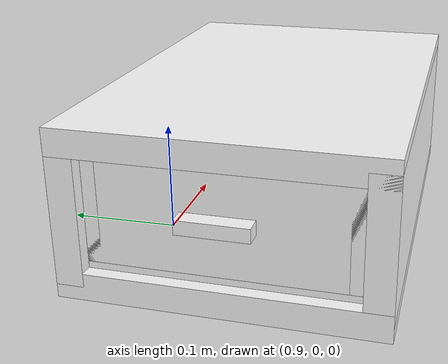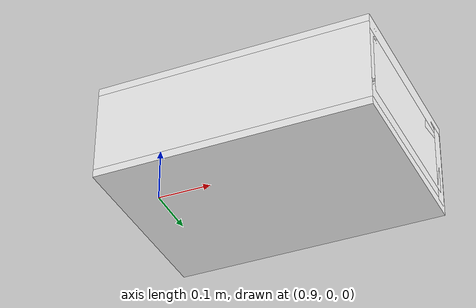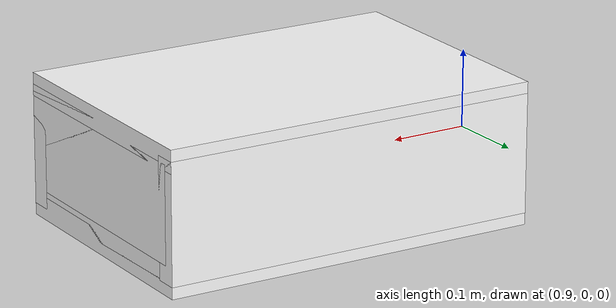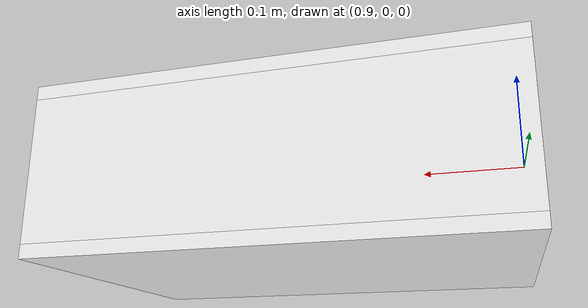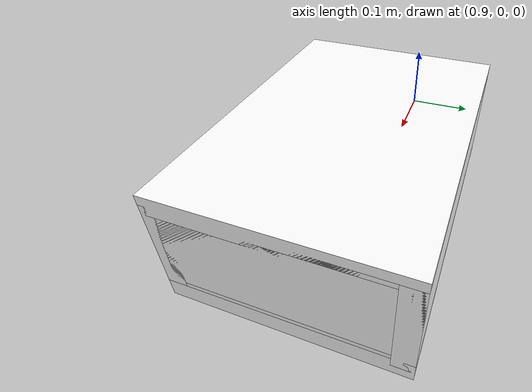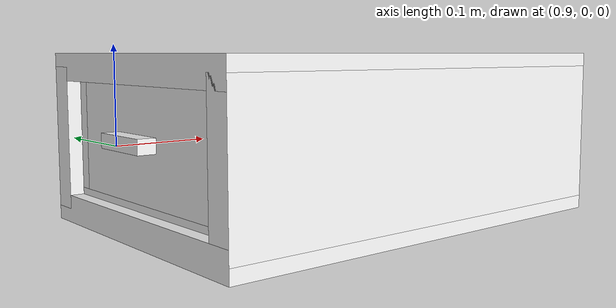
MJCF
<mujoco model="drawer">
        <compiler angle="radian" eulerseq='zxy' />
        <option gravity = "0 0 0" />
        <option>
            <flag contact = "disable"/>
        </option>
        <statistic	extent="1.0" center="0.0 0.0 0.0"/>
        <visual>
            <map fogstart="3" fogend="5" force="0.1" znear=" 0.100000 " zfar=" 12.000000 "/>
        </visual>
        <size njmax="500" nconmax="100" />
        <actuator>
            <velocity joint="drawerJ" name="viva_revolution" kv='10'></velocity>
        </actuator>
        <asset>
            <texture builtin="flat" name="objtex" height="32" width="32" rgb1="1 1 1" type="cube"></texture>
            <texture builtin="flat" name="handletex" height="32" width="32" rgb1="1 1 1" type="cube"></texture>
            <material name="geomObj" shininess="0.03" specular="0.75" texture="objtex"></material>
            <material name="geomHandle" shininess="0.03" specular="0.75" texture="handletex"></material>
        </asset>
        <worldbody>
            <body name="cabinet_bottom" pos= " 1.136597 -0.048290 -0.076257 "  quat= " 0.008434 0.000000 0.000000 0.999964" >
                <inertial pos="0 0 0" mass="1" diaginertia="1 1 1" />
                <geom size= " 0.246636 0.170220 0.014780 "  type="box" material="geomObj" name="b"/>
                <body name="cabinet_left" pos= " 0.000000 -0.155441 0.076596 " >
                    <inertial pos="0 0 0" mass="1" diaginertia="1 1 1" />
                    <geom size= " 0.246636 0.014780 0.076596 "  type="box" material="geomObj" name="c" />
                </body>
                <body name="cabinet_right" pos= " 0.000000 0.155441 0.076596 " >
                    <inertial pos="0 0 0" mass="1" diaginertia="1 1 1" />
                    <geom size= " 0.246636 0.014780 0.076596 "  type="box" material="geomObj" name="d" />
                </body>
                <body name="cabinet_top" pos= " 0.000000 0.000000 0.153191 " >
                    <inertial pos="0 0 0" mass="1" diaginertia="1 1 1" />
                    <geom size= " 0.246636 0.170220 0.014780 "  type="box" material="geomObj" name="e"/>
                </body>
                <body name="cabinet_back" pos= " -0.231856 0.000000 0.076596 "  >
                    <inertial pos="0 0 0" mass="1" diaginertia="1 1 1" />
                    <geom size= " 0.014780 0.170220 0.076596 "  type="box" material="geomObj" name="f" />
                </body>
                <body name="drawer" pos= " 0.000000 0.000000 0.007390 "  >
                    <geom size= " 0.231856 0.155441 0.014780 "  type="box" material="geomObj" name="ddddfadfadsfac" />
                    <joint name="drawerJ" pos="0 0 0" axis="1 0 0" type="slide" limited="true" range= "0  0.36995328962802887 "  />
                    <inertial pos="0 0 0" mass="1" diaginertia="1 1 1" />
                    <body name="drawer_left" pos= " 0.000000 -0.140661 0.076596 " >
                        <inertial pos="0 0 0" mass="1" diaginertia="1 1 1" />
                        <geom size= " 0.231856 0.014780 0.061816 "  type="box" material="geomObj" name="ddc" />
                    </body>
                    <body name="drawer_right" pos= " 0.000000 0.140661 0.076596 " >
                        <inertial pos="0 0 0" mass="1" diaginertia="1 1 1" />
                        <geom size= " 0.231856 0.014780 0.061816 "  type="box" material="geomObj" name="dddd" />
                    </body>
                    <body name="drawer_front" pos= " 0.217076 0.000000 0.076596 " >
                        <inertial pos="0 0 0" mass="1" diaginertia="1 1 1" />
                        <geom size= " 0.014780 0.155441 0.061816 "  type="box" material="geomObj" name="eeeee"/>
                    </body>
                    <body name="drawer_back" pos= " -0.231856 0.000000 0.076596 "  >
                        <inertial pos="0 0 0" mass="1" diaginertia="1 1 1" />
                        <geom size= " 0.014780 0.155441 0.061816 "  type="box" material="geomObj" name="fffff" />
                    </body>
                    <body name="knob" pos= " 0.246636 0.000000 0.076596 " >
                        <inertial pos="0 0 0" mass="0.1" diaginertia="0.1 0.1 0.1" />
                        <geom size= " 0.009333 0.037642 0.007483 "  pos="0 0 0" type="box" material="geomHandle" name="handle"/>
                    </body>
                </body>
            </body>
            <body name="external_camera_body_0" pos="0.0 0 0.00">
                <camera euler="-1.57 1.57 0.0" fovy=" 54.280851 " name="external_camera_0" pos="0.0 0 0"></camera>
                <inertial pos= " 0.00 0.0 0.000000 " mass="1" diaginertia="1 1 1" />
                <joint name="cam_j" pos="0.0 0 0" axis = "1 0 0" type="free" />
            </body>
        </worldbody>
    </mujoco>
